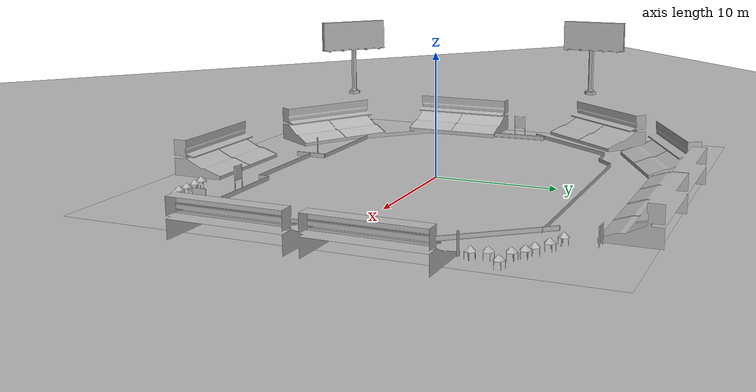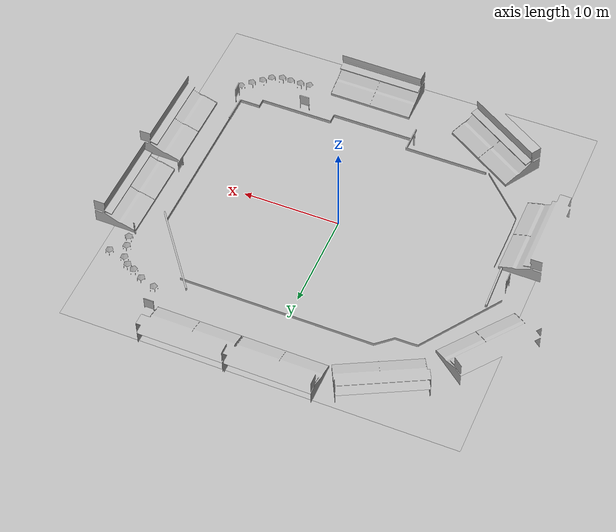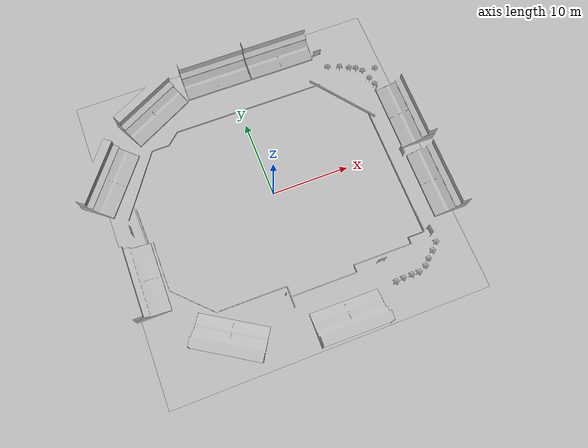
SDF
<?xml version="1.0"?>
<sdf version="1.7">
  <world name="2022_september_pro">
    <plugin filename="gz-sim-physics-system" name="gz::sim::systems::Physics"/>
    <plugin filename="gz-sim-scene-broadcaster-system" name="gz::sim::systems::SceneBroadcaster"/>
    <plugin filename="gz-sim-sensors-system" name="gz::sim::systems::Sensors">
      <render_engine>ogre2</render_engine>
    </plugin>
    <plugin filename="gz-sim-user-commands-system" name="gz::sim::systems::UserCommands"/>
    <plugin filename="libdeepracer_gazebo_system_plugin.so" name="gz::sim::systems::DeepRacerGazeboSystemPlugin"/>
    <scene>
      <ambient>0.5 0.5 0.5 1.0</ambient>
      <shadows>0</shadows>
      <grid>false</grid>
      <origin_visual>false</origin_visual>
      <sky/>
    </scene>
    <light type="directional" name="sun">
      <pose>0 0 15 0 0 0</pose>
      <cast_shadows>false</cast_shadows>
      <intensity>1.0</intensity>
      <direction>-0.5 0.1 -0.9</direction>
      <diffuse>1 1 0.8 1</diffuse>
      <specular>0.8 0.8 0.8 1</specular>
    </light>
    <light name="Light 1" type="point">
      <pose>0 0 15 0 0 0</pose>
      <diffuse>0.225 0.225 0.225 1</diffuse>
      <specular>.1 .1 .1 1</specular>
      <attenuation>
        <constant>0.4</constant>
        <linear>0.01</linear>
        <quadratic>0.00</quadratic>
        <range>50</range>
      </attenuation>
      <direction>0 0 -1</direction>
      <cast_shadows>false</cast_shadows>
    </light>
    <include>
      <uri>model://models/2022_september_pro</uri>
      <pose>0 0 0 0 0 0</pose>
      <name>racetrack</name>
    </include>
  </world>
</sdf>

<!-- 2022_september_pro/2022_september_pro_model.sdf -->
<sdf version="1.7">
<model name="template_model">
<link name="track">
<collision name="collision">
<pose>0 0 0 0 0 0</pose>
<geometry>
<mesh>
<uri>model://meshes/2022_september_pro/2022_september_pro_collision.dae</uri>
</mesh>
</geometry>
</collision>
<visual name="visual">
<pose>0 0 0 0 0 0</pose>
<geometry>
<mesh>
<uri>model://meshes/2022_september_pro/2022_september_pro.dae</uri>
</mesh>
</geometry>
</visual>
</link>
<link name="background">
<visual name="visual">
<pose>0 0 0 0 0 0</pose>
<geometry>
<mesh>
<uri>model://meshes/2022_september_pro/background.dae</uri>
</mesh>
</geometry>
</visual>
</link>
<static>1</static>
</model>
</sdf>
